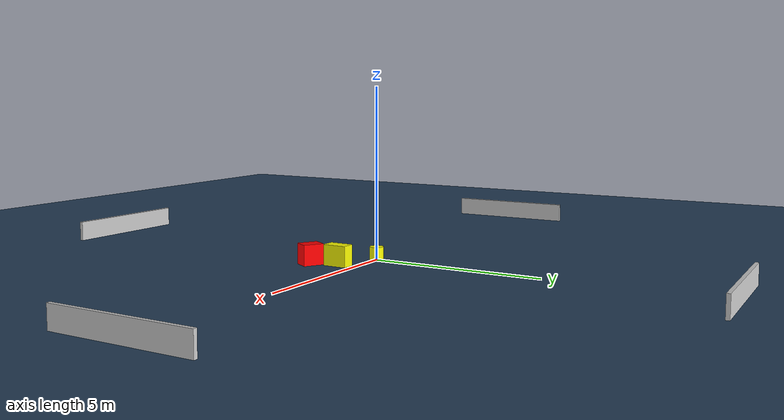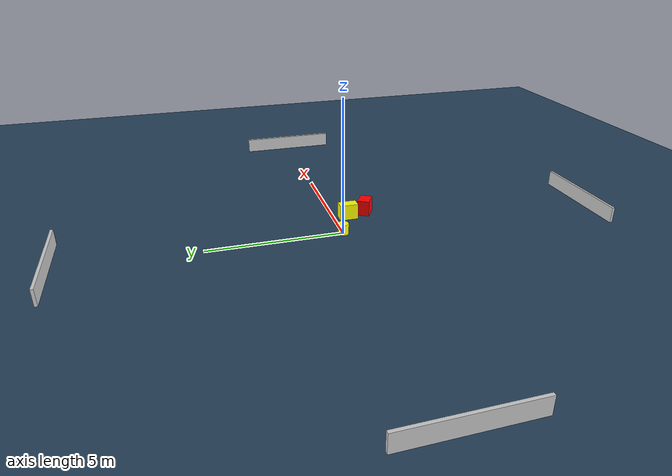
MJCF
<?xml version="1.0" ?>
<mujoco model="generated_environment">
  <option timestep="0.01" integrator="RK4" cone="elliptic"/>
  <default>
    <geom density="1"/>
  </default>
  <asset>
    <texture builtin="gradient" height="3072" name="skybox" rgb1="0.3 0.5 0.7" rgb2="0 0 0" type="skybox" width="512"/>
    <texture builtin="checker" height="300" name="groundplane" rgb1="0.2 0.3 0.4" rgb2="0.1 0.2 0.3" type="2d" width="300"/>
    <material name="groundplane" reflectance="0.2" texrepeat="5 5" texture="groundplane"/>
  </asset>
  <worldbody>
    <light dir="0 0 -1" directional="true" pos="0 0 1.5"/>
    <geom condim="3" friction="0.5 0.005 0.001" material="groundplane" name="floor" pos="0 0 0" size="0 0 0.05" type="plane"/>
    <body name="walls">
      <geom name="wall_1" condim="4" pos="-10.0 0.0 0.3" rgba="0.800000011920929 0.800000011920929 0.800000011920929 1.0" size="0.05 2.0 0.3" type="box"/>
      <geom name="wall_2" condim="4" pos="10.0 0.0 0.3" rgba="0.800000011920929 0.800000011920929 0.800000011920929 1.0" size="0.05 2.0 0.3" type="box"/>
      <geom name="wall_3" condim="4" pos="0.0 -10.0 0.3" rgba="0.800000011920929 0.800000011920929 0.800000011920929 1.0" size="2.0 0.05 0.3" type="box"/>
      <geom name="wall_4" condim="4" pos="0.0 10.0 0.3" rgba="0.800000011920929 0.800000011920929 0.800000011920929 1.0" size="2.0 0.05 0.3" type="box"/>
    </body>
    <body name="robot">
      <joint name="joint_x" type="slide" pos="0 0 0" axis="1 0 0"/>
      <joint name="joint_y" type="slide" pos="0 0 0" axis="0 1 0"/>
      <geom name="robot" type="cylinder" pos="0.0 0.0 0.2" size="0.2 0.2 0.0" mass="5.0" friction="1.0 0.005 0.0001" condim="4" rgba="1.0 1.0 0.0 1.0"/>
    </body>
    <body name="obstacle_1_movable">
      <geom name="obstacle_1_movable" condim="4" pos="1.224299525060633 -0.5421913340865665 0.3" euler="0 0 359.1277497364429" friction="0.0 0.005 0.001" rgba="1.0 1.0 0.0 1.0" size="0.2000406727030943 0.3508200345202759 0.3" type="box" mass="0.1"/>
      <joint type="free"/>
    </body>
    <body name="obstacle_2_static">
      <geom name="obstacle_2_static" condim="4" pos="1.4693588377572198 -1.3061306290497214 0.3" euler="0 0 238.9202500781176" friction="0.0 0.005 0.001" rgba="1.0 0.0 0.0 1.0" size="0.2291236243049509 0.29938454165429346 0.3" type="box"/>
    </body>
  </worldbody>
  <actuator>
    <motor name="actuator_x" joint="joint_x" gear="1" ctrlrange="-1 1"/>
    <motor name="actuator_y" joint="joint_y" gear="1" ctrlrange="-1 1"/>
  </actuator>
</mujoco>
